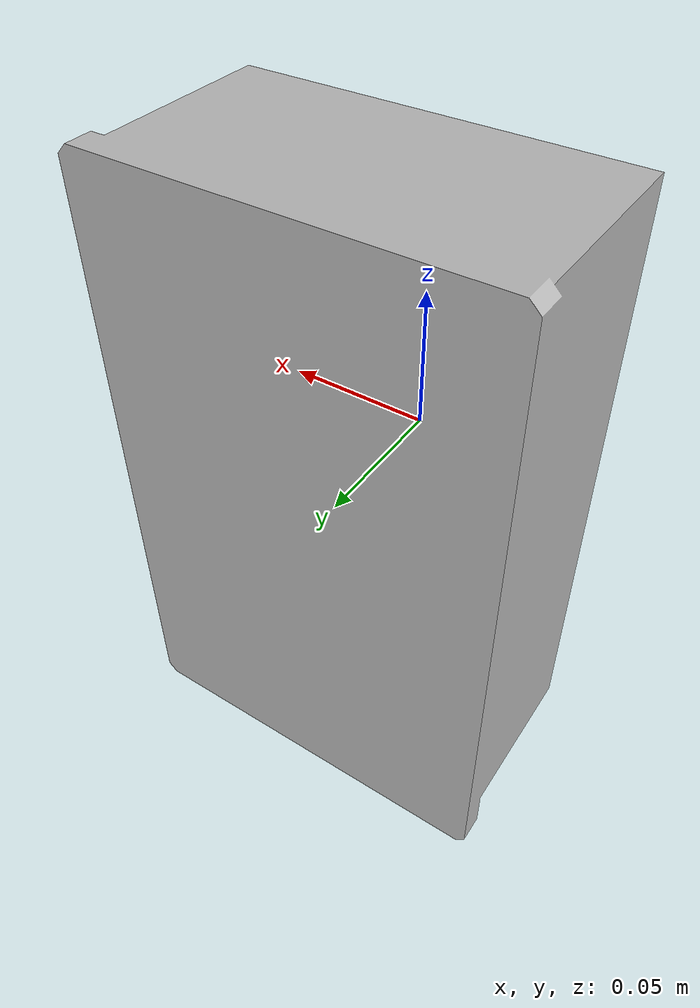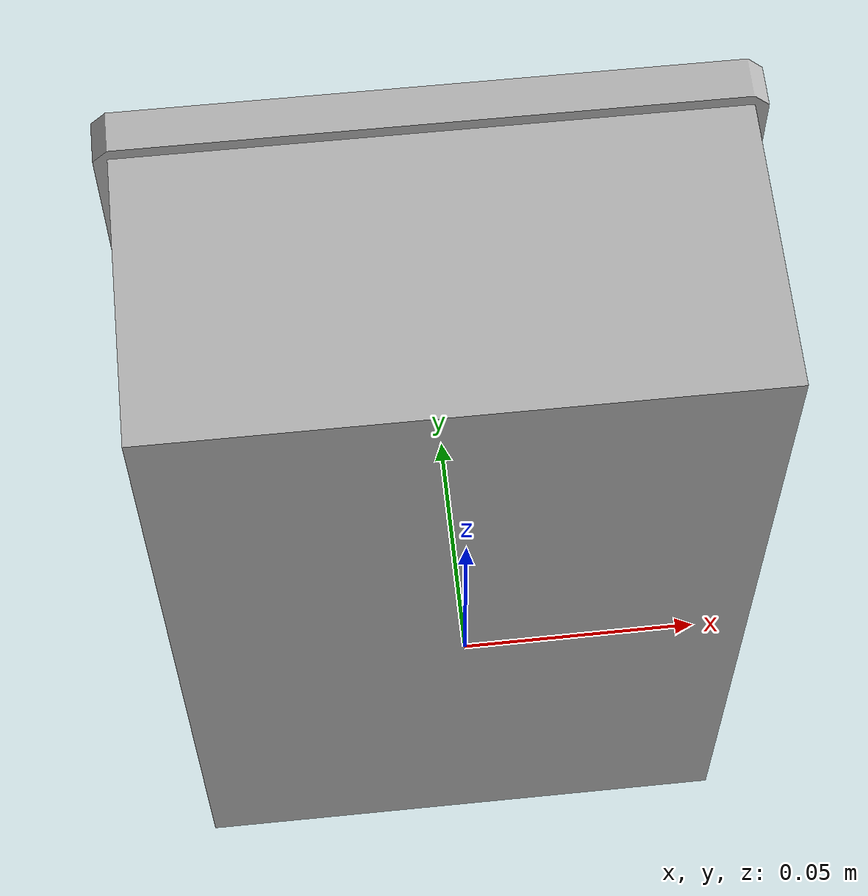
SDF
<?xml version="1.0" ?>
<sdf version="1.4">
  <model name="shelf2_box2_1b">
    <link name="body">
      <pose>0 0 0 0 0 0</pose>
      <inertial>
        <pose>  -0.000123   0.037384   0.000914 0 0 0</pose>
        <mass>0.5</mass>
        <inertia>
          <ixx>0.01</ixx>
          <ixy>0</ixy>
          <ixz>0</ixz>
          <iyy>0.01</iyy>
          <iyz>0</iyz>
          <izz>0.01</izz>
        </inertia>
      </inertial>
      <collision name="collision">
        <geometry>
          <mesh>
            <uri>model://bookshelf/shelf2_items/box2_1b/box2_1b.dae</uri>
          </mesh>
        </geometry>
      </collision>
      <visual name="visual">
        <geometry>
          <mesh>
            <uri>model://bookshelf/shelf2_items/box2_1b/box2_1b.dae</uri>
          </mesh>
        </geometry>
      </visual>
    </link>
  </model>
</sdf>
